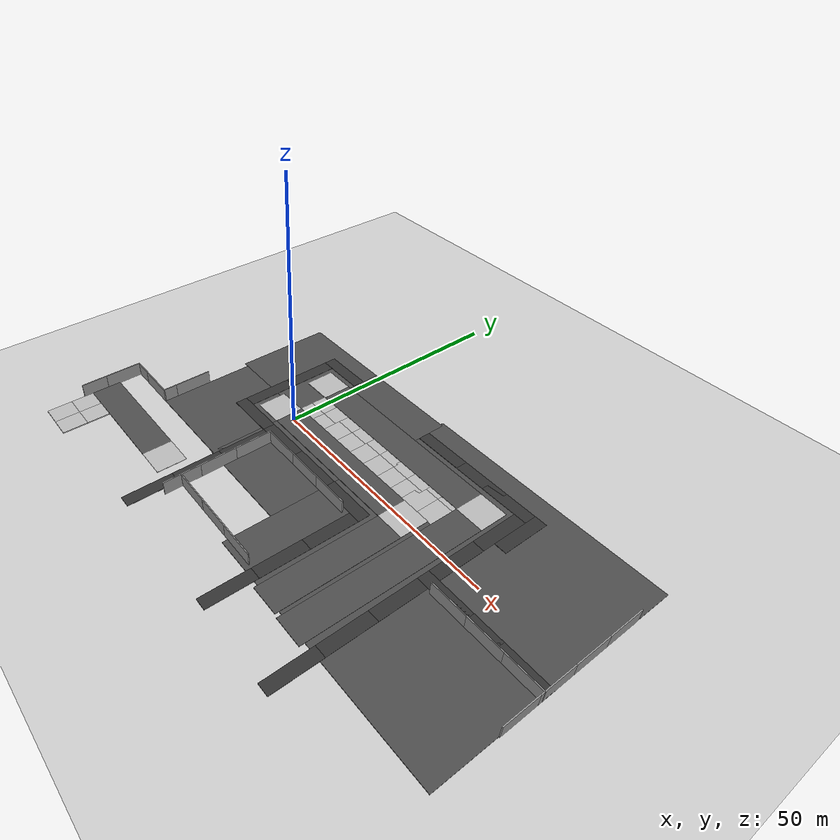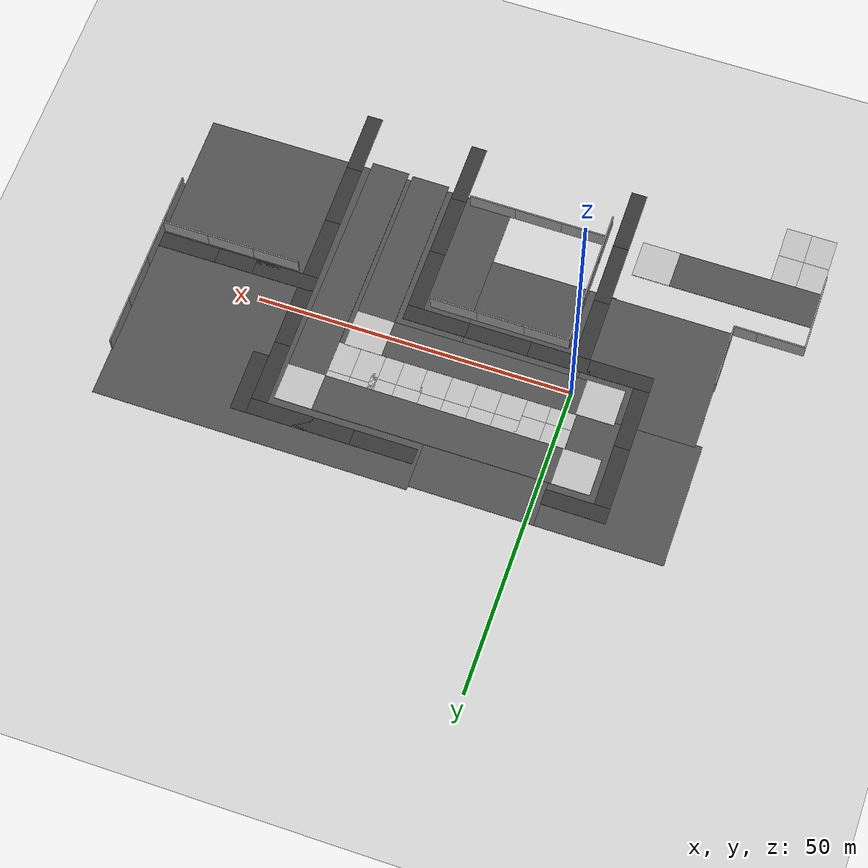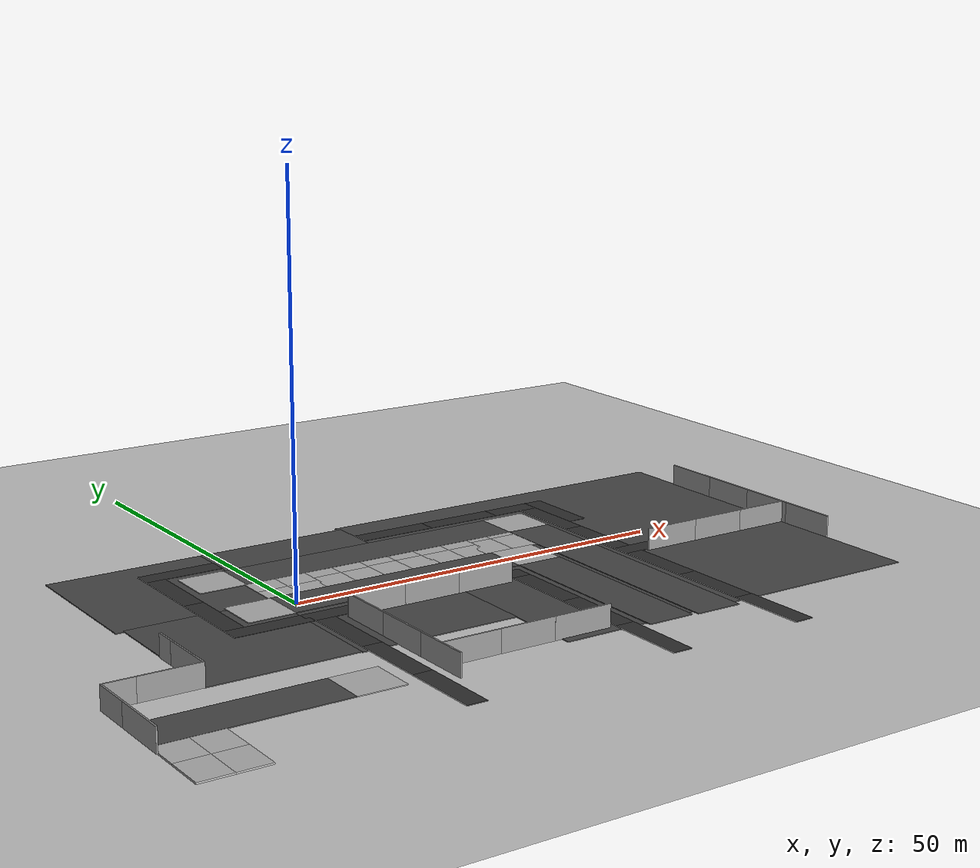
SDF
<sdf version="1.7">
 <world name="default">
  <model name="ground_plane">
   <static>1</static>
   <link name="link">
    <collision name="collision">
     <geometry><plane><normal>0 0 1</normal><size>100 100</size></plane></geometry>
     <surface><friction><ode><mu>100</mu><mu2>50</mu2></ode></friction></surface>
    </collision>
    <visual name="visual">
     <cast_shadows>0</cast_shadows>
     <geometry><plane><normal>0 0 1</normal><size>100 100</size></plane></geometry>
     <material>
      <script><uri>file://media/materials/scripts/gazebo.material</uri><name>Gazebo/Grey</name></script>
     </material>
    </visual>
   </link>
  </model>
  <model name="asphalt_plane">
   <static>1</static>
   <link name="link">
    <collision name="collision">
     <geometry><box><size>20 20 0.1</size></box></geometry>
     <surface><friction><ode><mu>100</mu><mu2>50</mu2></ode></friction></surface>
    </collision>
    <visual name="visual">
     <cast_shadows>0</cast_shadows>
     <geometry><box><size>20 20 0.1</size></box></geometry>
     <material>
      <script>
       <uri>model://asphalt_plane/materials/scripts</uri>
       <uri>model://asphalt_plane/materials/textures</uri>
       <name>vrc/asphalt</name>
      </script>
     </material>
    </visual>
   </link>
   <pose>-10.1692 -7.43707 0 0 -0 0</pose>
  </model>
  <model name="asphalt_plane_clone">
   <static>1</static>
   <link name="link">
    <collision name="collision">
     <geometry><box><size>20 20 0.1</size></box></geometry>
     <surface><friction><ode><mu>100</mu><mu2>50</mu2></ode></friction></surface>
    </collision>
    <visual name="visual">
     <cast_shadows>0</cast_shadows>
     <geometry><box><size>20 20 0.1</size></box></geometry>
     <material>
      <script>
       <uri>model://asphalt_plane/materials/scripts</uri>
       <uri>model://asphalt_plane/materials/textures</uri>
       <name>vrc/asphalt</name>
      </script>
     </material>
    </visual>
   </link>
   <pose>-11.1971 12.1802 0 0 -0 0</pose>
  </model>
  <model name="asphalt_plane_clone_clone">
   <static>1</static>
   <link name="link">
    <collision name="collision">
     <geometry><box><size>20 20 0.1</size></box></geometry>
     <surface><friction><ode><mu>100</mu><mu2>50</mu2></ode></friction></surface>
    </collision>
    <visual name="visual">
     <cast_shadows>0</cast_shadows>
     <geometry><box><size>20 20 0.1</size></box></geometry>
     <material>
      <script>
       <uri>model://asphalt_plane/materials/scripts</uri>
       <uri>model://asphalt_plane/materials/textures</uri>
       <name>vrc/asphalt</name>
      </script>
     </material>
    </visual>
   </link>
   <pose>8.71597 12.1785 0 0 -0 0</pose>
  </model>
  <model name="asphalt_plane_clone_clone_0">
   <static>1</static>
   <link name="link">
    <collision name="collision">
     <geometry><box><size>20 20 0.1</size></box></geometry>
     <surface><friction><ode><mu>100</mu><mu2>50</mu2></ode></friction></surface>
    </collision>
    <visual name="visual">
     <cast_shadows>0</cast_shadows>
     <geometry><box><size>20 20 0.1</size></box></geometry>
     <material>
      <script>
       <uri>model://asphalt_plane/materials/scripts</uri>
       <uri>model://asphalt_plane/materials/textures</uri>
       <name>vrc/asphalt</name>
      </script>
     </material>
    </visual>
   </link>
   <pose>8.27987 -7.58982 0 0 -0 0</pose>
  </model>
  <include>
   <uri>file:///home/dhaval_lad/dhaval_ws/src/Outdoor_navigation_decision_making/outdoor_robot_spawner/models/actor_1</uri>
  </include>
  <include>
   <uri>file:///home/dhaval_lad/dhaval_ws/src/Outdoor_navigation_decision_making/outdoor_robot_spawner/models/actor_2</uri>
  </include>
  <model name="side walk_clone_0">
   <pose>-6.19156 17.3637 0 0 -0 0</pose>
   <static>1</static>
   <link name="link">
    <visual name="visual">
     <pose>0 0 0.05 0 -0 0</pose>
     <geometry><box><size>10 2.5 0.1</size></box></geometry>
     <material><ambient>0.2 0.2 0.2 1</ambient></material>
    </visual>
    <collision name="collision">
     <pose>0 0 0.05 0 -0 0</pose>
     <geometry><box><size>10 2.5 0.1</size></box></geometry>
    </collision>
   </link>
  </model>
  <model name="side walk_clone_1">
   <pose>-9.91314 11.1641 0 0 0 -1.5667</pose>
   <static>1</static>
   <link name="link">
    <visual name="visual">
     <pose>0 0 0.05 0 -0 0</pose>
     <geometry><box><size>10 2.5 0.1</size></box></geometry>
     <material><ambient>0.2 0.2 0.2 1</ambient></material>
    </visual>
    <collision name="collision">
     <pose>0 0 0.05 0 -0 0</pose>
     <geometry><box><size>10 2.5 0.1</size></box></geometry>
    </collision>
   </link>
  </model>
  <model name="side walk_clone_1_clone">
   <pose>-9.88629 1.1782 0 0 0 -1.56946</pose>
   <static>1</static>
   <link name="link">
    <visual name="visual">
     <pose>0 0 0.05 0 -0 0</pose>
     <geometry><box><size>10 2.5 0.1</size></box></geometry>
     <material><ambient>0.2 0.2 0.2 1</ambient></material>
    </visual>
    <collision name="collision">
     <pose>0 0 0.05 0 -0 0</pose>
     <geometry><box><size>10 2.5 0.1</size></box></geometry>
    </collision>
   </link>
  </model>
  <model name="side walk_clone_0_clone">
   <pose>-6.1264 -5.0705 0 0 -0 0</pose>
   <static>1</static>
   <link name="link">
    <visual name="visual">
     <pose>0 0 0.05 0 -0 0</pose>
     <geometry><box><size>10 2.5 0.1</size></box></geometry>
     <material><ambient>0.2 0.2 0.2 1</ambient></material>
    </visual>
    <collision name="collision">
     <pose>0 0 0.05 0 -0 0</pose>
     <geometry><box><size>10 2.5 0.1</size></box></geometry>
    </collision>
   </link>
  </model>
  <model name="side walk_clone_0_clone_0">
   <pose>3.31852 -5.07088 0 0 -0 0</pose>
   <static>1</static>
   <link name="link">
    <visual name="visual">
     <pose>0 0 0.05 0 -0 0</pose>
     <geometry><box><size>10 2.5 0.1</size></box></geometry>
     <material><ambient>0.2 0.2 0.2 1</ambient></material>
    </visual>
    <collision name="collision">
     <pose>0 0 0.05 0 -0 0</pose>
     <geometry><box><size>10 2.5 0.1</size></box></geometry>
    </collision>
   </link>
  </model>
  <model name="side walk_clone_1_clone_clone">
   <pose>0.222815 -11.3123 0 0 0 -1.5667</pose>
   <static>1</static>
   <link name="link">
    <visual name="visual">
     <pose>0 0 0.05 0 -0 0</pose>
     <geometry><box><size>10 2.5 0.1</size></box></geometry>
     <material><ambient>0.2 0.2 0.2 1</ambient></material>
    </visual>
    <collision name="collision">
     <pose>0 0 0.05 0 -0 0</pose>
     <geometry><box><size>10 2.5 0.1</size></box></geometry>
    </collision>
   </link>
  </model>
  <model name="side walk_clone_0_clone_clone">
   <pose>13.2672 -5.07602 0 0 -0 0</pose>
   <static>1</static>
   <link name="link">
    <visual name="visual">
     <pose>0 0 0.05 0 -0 0</pose>
     <geometry><box><size>10 2.5 0.1</size></box></geometry>
     <material><ambient>0.2 0.2 0.2 1</ambient></material>
    </visual>
    <collision name="collision">
     <pose>0 0 0.05 0 -0 0</pose>
     <geometry><box><size>10 2.5 0.1</size></box></geometry>
    </collision>
   </link>
  </model>
  <model name="asphalt_plane_0_clone">
   <static>1</static>
   <link name="link">
    <collision name="collision"><geometry><box><size>50 50 0.1</size></box></geometry></collision>
    <visual name="visual">
     <cast_shadows>0</cast_shadows>
     <geometry><box><size>50 50 0.1</size></box></geometry>
     <material>
      <script>
       <uri>model://asphalt_plane/materials/scripts</uri>
       <uri>model://asphalt_plane/materials/textures</uri>
       <name>vrc/asphalt</name>
      </script>
     </material>
    </visual>
   </link>
   <pose>43.2053 -2.21198 0 0 -0 0</pose>
  </model>
  <model name="side walk_clone_2">
   <pose>23.7417 17.3764 0 0 -0 0</pose>
   <static>1</static>
   <link name="link">
    <visual name="visual">
     <pose>0 0 0.05 0 -0 0</pose>
     <geometry><box><size>10 2.5 0.1</size></box></geometry>
     <material><ambient>0.2 0.2 0.2 1</ambient></material>
    </visual>
    <collision name="collision">
     <pose>0 0 0.05 0 -0 0</pose>
     <geometry><box><size>10 2.5 0.1</size></box></geometry>
    </collision>
   </link>
  </model>
  <model name="side walk_clone_3">
   <pose>33.7384 17.3743 0 0 -0 0</pose>
   <static>1</static>
   <link name="link">
    <visual name="visual">
     <pose>0 0 0.05 0 -0 0</pose>
     <geometry><box><size>10 2.5 0.1</size></box></geometry>
     <material><ambient>0.2 0.2 0.2 1</ambient></material>
    </visual>
    <collision name="collision">
     <pose>0 0 0.05 0 -0 0</pose>
     <geometry><box><size>10 2.5 0.1</size></box></geometry>
    </collision>
   </link>
  </model>
  <model name="side walk_clone_1_clone_clone_clone_clone">
   <pose>0.256591 -21.2274 0 0 0 -1.5667</pose>
   <static>1</static>
   <link name="link">
    <visual name="visual">
     <pose>0 0 0.05 0 -0 0</pose>
     <geometry><box><size>10 2.5 0.1</size></box></geometry>
     <material><ambient>0.2 0.2 0.2 1</ambient></material>
    </visual>
    <collision name="collision">
     <pose>0 0 0.05 0 -0 0</pose>
     <geometry><box><size>10 2.5 0.1</size></box></geometry>
    </collision>
   </link>
  </model>
  <model name="side walk_clone_1_clone_clone_clone_clone_0">
   <pose>0.290651 -31.2092 0 0 0 -1.5667</pose>
   <static>1</static>
   <link name="link">
    <visual name="visual">
     <pose>0 0 0.05 0 -0 0</pose>
     <geometry><box><size>10 2.5 0.1</size></box></geometry>
     <material><ambient>0.2 0.2 0.2 1</ambient></material>
    </visual>
    <collision name="collision">
     <pose>0 0 0.05 0 -0 0</pose>
     <geometry><box><size>10 2.5 0.1</size></box></geometry>
    </collision>
   </link>
  </model>
  <model name="side walk_clone_0_clone_clone_clone">
   <pose>23.1677 -5.07058 0 0 -0 0</pose>
   <static>1</static>
   <link name="link">
    <visual name="visual">
     <pose>0 0 0.05 0 -0 0</pose>
     <geometry><box><size>10 2.5 0.1</size></box></geometry>
     <material><ambient>0.2 0.2 0.2 1</ambient></material>
    </visual>
    <collision name="collision">
     <pose>0 0 0.05 0 -0 0</pose>
     <geometry><box><size>10 2.5 0.1</size></box></geometry>
    </collision>
   </link>
  </model>
  <model name="side walk_clone_1_clone_clone_clone_clone_1">
   <pose>43.9499 11.1428 0 0 0 -1.5667</pose>
   <static>1</static>
   <link name="link">
    <visual name="visual">
     <pose>0 0 0.05 0 -0 0</pose>
     <geometry><box><size>10 2.5 0.1</size></box></geometry>
     <material><ambient>0.2 0.2 0.2 1</ambient></material>
    </visual>
    <collision name="collision">
     <pose>0 0 0.05 0 -0 0</pose>
     <geometry><box><size>10 2.5 0.1</size></box></geometry>
    </collision>
   </link>
  </model>
  <model name="side walk_clone_1_clone_clone_clone_clone_2">
   <pose>43.9881 1.1868 0 0 0 -1.5667</pose>
   <static>1</static>
   <link name="link">
    <visual name="visual">
     <pose>0 0 0.05 0 -0 0</pose>
     <geometry><box><size>10 2.5 0.1</size></box></geometry>
     <material><ambient>0.2 0.2 0.2 1</ambient></material>
    </visual>
    <collision name="collision">
     <pose>0 0 0.05 0 -0 0</pose>
     <geometry><box><size>10 2.5 0.1</size></box></geometry>
    </collision>
   </link>
  </model>
  <model name="side walk_clone_0_clone_clone_clone_0_clone_clone">
   <pose>53.9006 -4.98965 0 0 -0 0</pose>
   <static>1</static>
   <link name="link">
    <visual name="visual">
     <pose>0 0 0.05 0 -0 0</pose>
     <geometry><box><size>10 2.5 0.1</size></box></geometry>
     <material><ambient>0.2 0.2 0.2 1</ambient></material>
    </visual>
    <collision name="collision">
     <pose>0 0 0.05 0 -0 0</pose>
     <geometry><box><size>10 2.5 0.1</size></box></geometry>
    </collision>
   </link>
  </model>
  <model name="side walk_clone_0_clone_clone_clone_0_clone_clone_0">
   <pose>63.3362 -4.96787 0 0 -0 0</pose>
   <static>1</static>
   <link name="link">
    <visual name="visual">
     <pose>0 0 0.05 0 -0 0</pose>
     <geometry><box><size>10 2.5 0.1</size></box></geometry>
     <material><ambient>0.2 0.2 0.2 1</ambient></material>
    </visual>
    <collision name="collision">
     <pose>0 0 0.05 0 -0 0</pose>
     <geometry><box><size>10 2.5 0.1</size></box></geometry>
    </collision>
   </link>
  </model>
  <model name="road_plane_without_marks_clone">
   <static>1</static>
   <link name="link">
    <collision name="collision"><geometry><box><size>22.5097 6 0.1</size></box></geometry></collision>
    <visual name="visual">
     <cast_shadows>0</cast_shadows>
     <geometry><box><size>22.5097 6 0.1</size></box></geometry>
     <material>
      <script>
       <uri>model://road_plane_without_marks/materials/scripts</uri>
       <uri>model://road_plane_without_marks/materials/textures</uri>
       <name>vrc/road_no_m</name>
      </script>
     </material>
    </visual>
   </link>
   <pose>-19.9247 -25.2286 0.081661 0 -0 0</pose>
  </model>
  <model name="road_diag_clone">
   <static>1</static>
   <link name="link">
    <collision name="collision"><geometry><box><size>6 6 0.1</size></box></geometry></collision>
    <visual name="visual">
     <cast_shadows>0</cast_shadows>
     <geometry><box><size>6 6 0.1</size></box></geometry>
     <material>
      <script>
       <uri>model://road_diag/materials/scripts</uri>
       <uri>model://road_diag/materials/textures</uri>
       <name>vrc/diag</name>
      </script>
     </material>
    </visual>
   </link>
   <pose>-5.71886 -25.2377 0.084251 0 -0 1.56496</pose>
  </model>
  <model name="road_plane_without_marks_clone_clone">
   <static>1</static>
   <link name="link">
    <collision name="collision"><geometry><box><size>37.9662 6 0.1</size></box></geometry></collision>
    <visual name="visual">
     <cast_shadows>0</cast_shadows>
     <geometry><box><size>37.9662 6 0.1</size></box></geometry>
     <material>
      <script>
       <uri>model://road_plane_without_marks/materials/scripts</uri>
       <uri>model://road_plane_without_marks/materials/textures</uri>
       <name>vrc/road_no_m</name>
      </script>
     </material>
    </visual>
   </link>
   <pose>17.0824 12.0438 0.081661 0 -0 0</pose>
  </model>
  <model name="road_diag_clone_0">
   <static>1</static>
   <link name="link">
    <collision name="collision"><geometry><box><size>6 6 0.1</size></box></geometry></collision>
    <visual name="visual">
     <cast_shadows>0</cast_shadows>
     <geometry><box><size>6 6 0.1</size></box></geometry>
     <material>
      <script>
       <uri>model://road_diag/materials/scripts</uri>
       <uri>model://road_diag/materials/textures</uri>
       <name>vrc/diag</name>
      </script>
     </material>
    </visual>
   </link>
   <pose>-4.65965 12.0313 0.084251 0 -0 3.1412</pose>
  </model>
  <model name="road_plane_without_marks_clone_clone_clone">
   <static>1</static>
   <link name="link">
    <collision name="collision"><geometry><box><size>37.8755 6 0.1</size></box></geometry></collision>
    <visual name="visual">
     <cast_shadows>0</cast_shadows>
     <geometry><box><size>37.8755 6 0.1</size></box></geometry>
     <material>
      <script>
       <uri>model://road_plane_without_marks/materials/scripts</uri>
       <uri>model://road_plane_without_marks/materials/textures</uri>
       <name>vrc/road_no_m</name>
      </script>
     </material>
    </visual>
   </link>
   <pose>38.793 -9.3092 0.081661 0 0 -1.57875</pose>
  </model>
  <model name="road_diag_clone_0_clone">
   <static>1</static>
   <link name="link">
    <collision name="collision"><geometry><box><size>6 6 0.1</size></box></geometry></collision>
    <visual name="visual">
     <cast_shadows>0</cast_shadows>
     <geometry><box><size>6 6 0.1</size></box></geometry>
     <material>
      <script>
       <uri>model://road_diag/materials/scripts</uri>
       <uri>model://road_diag/materials/textures</uri>
       <name>vrc/diag</name>
      </script>
     </material>
    </visual>
   </link>
   <pose>-4.66703 0.067296 0.084251 0 0 -1.57009</pose>
  </model>
  <model name="road_diag_clone_clone">
   <static>1</static>
   <link name="link">
    <collision name="collision"><geometry><box><size>6 6 0.1</size></box></geometry></collision>
    <visual name="visual">
     <cast_shadows>0</cast_shadows>
     <geometry><box><size>6 6 0.1</size></box></geometry>
     <material>
      <script>
       <uri>model://road_diag/materials/scripts</uri>
       <uri>model://road_diag/materials/textures</uri>
       <name>vrc/diag</name>
      </script>
     </material>
    </visual>
   </link>
   <pose>32.0741 0.165658 0.084251 0 -0 1.56496</pose>
  </model>
  <model name="road_plane_without_marks_clone_clone_clone_0">
   <static>1</static>
   <link name="link">
    <collision name="collision"><geometry><box><size>31.1862 6 0.1</size></box></geometry></collision>
    <visual name="visual">
     <cast_shadows>0</cast_shadows>
     <geometry><box><size>31.1862 6 0.1</size></box></geometry>
     <material>
      <script>
       <uri>model://road_plane_without_marks/materials/scripts</uri>
       <uri>model://road_plane_without_marks/materials/textures</uri>
       <name>vrc/road_no_m</name>
      </script>
     </material>
    </visual>
   </link>
   <pose>13.7408 0.166139 0.081661 0 -0 0</pose>
  </model>
  <model name="road_plane_without_marks_clone_0_clone">
   <static>1</static>
   <link name="link">
    <collision name="collision"><geometry><box><size>25.2144 6 0.1</size></box></geometry></collision>
    <visual name="visual">
     <cast_shadows>0</cast_shadows>
     <geometry><box><size>25.2144 6 0.1</size></box></geometry>
     <material>
      <script>
       <uri>model://road_plane_without_marks/materials/scripts</uri>
       <uri>model://road_plane_without_marks/materials/textures</uri>
       <name>vrc/road_no_m</name>
      </script>
     </material>
    </visual>
   </link>
   <pose>32.0175 -15.3655 0.081661 0 -0 1.56522</pose>
  </model>
  <model name="road_diag_clone_clone_clone">
   <static>1</static>
   <link name="link">
    <collision name="collision"><geometry><box><size>6 6 0.1</size></box></geometry></collision>
    <visual name="visual">
     <cast_shadows>0</cast_shadows>
     <geometry><box><size>6 6 0.1</size></box></geometry>
     <material>
      <script>
       <uri>model://road_diag/materials/scripts</uri>
       <uri>model://road_diag/materials/textures</uri>
       <name>vrc/diag</name>
      </script>
     </material>
    </visual>
   </link>
   <pose>38.9706 11.9877 0.084251 0 -0 1.56496</pose>
  </model>
  <model name="side walk_clone_0_clone_clone_clone_0_clone_clone_clone">
   <pose>47.7688 -4.98861 0 0 -0 0</pose>
   <static>1</static>
   <link name="link">
    <visual name="visual">
     <pose>0 0 0.05 0 -0 0</pose>
     <geometry><box><size>10 2.5 0.1</size></box></geometry>
     <material><ambient>0.2 0.2 0.2 1</ambient></material>
    </visual>
    <collision name="collision">
     <pose>0 0 0.05 0 -0 0</pose>
     <geometry><box><size>10 2.5 0.1</size></box></geometry>
    </collision>
   </link>
  </model>
  <model name="side walk_clone_3_clone">
   <pose>40.1805 17.3766 0 0 -0 0.000857</pose>
   <static>1</static>
   <link name="link">
    <visual name="visual">
     <pose>0 0 0.05 0 -0 0</pose>
     <geometry><box><size>10 2.5 0.1</size></box></geometry>
     <material><ambient>0.2 0.2 0.2 1</ambient></material>
    </visual>
    <collision name="collision">
     <pose>0 0 0.05 0 -0 0</pose>
     <geometry><box><size>10 2.5 0.1</size></box></geometry>
    </collision>
   </link>
  </model>
  <model name="side walk_clone_1_clone_clone_clone_3">
   <pose>26.8909 -11.2773 0 0 0 -1.57698</pose>
   <static>1</static>
   <link name="link">
    <visual name="visual">
     <pose>0 0 0.05 0 -0 0</pose>
     <geometry><box><size>10 2.5 0.1</size></box></geometry>
     <material><ambient>0.2 0.2 0.2 1</ambient></material>
    </visual>
    <collision name="collision">
     <pose>0 0 0.05 0 -0 0</pose>
     <geometry><box><size>10 2.5 0.1</size></box></geometry>
    </collision>
   </link>
  </model>
  <model name="side walk_clone_1_clone_clone_clone_3_clone">
   <pose>26.8122 -21.2253 0 0 0 -1.57698</pose>
   <static>1</static>
   <link name="link">
    <visual name="visual">
     <pose>0 0 0.05 0 -0 0</pose>
     <geometry><box><size>10 2.5 0.1</size></box></geometry>
     <material><ambient>0.2 0.2 0.2 1</ambient></material>
    </visual>
    <collision name="collision">
     <pose>0 0 0.05 0 -0 0</pose>
     <geometry><box><size>10 2.5 0.1</size></box></geometry>
    </collision>
   </link>
  </model>
  <model name="side walk_clone_1_clone_clone_clone_3_clone_0">
   <pose>26.7287 -31.1872 0 0 0 -1.57698</pose>
   <static>1</static>
   <link name="link">
    <visual name="visual">
     <pose>0 0 0.05 0 -0 0</pose>
     <geometry><box><size>10 2.5 0.1</size></box></geometry>
     <material><ambient>0.2 0.2 0.2 1</ambient></material>
    </visual>
    <collision name="collision">
     <pose>0 0 0.05 0 -0 0</pose>
     <geometry><box><size>10 2.5 0.1</size></box></geometry>
    </collision>
   </link>
  </model>
  <model name="side walk_clone_1_clone_clone_clone_clone_3">
   <pose>44.0417 -11.233 0 0 0 -1.5667</pose>
   <static>1</static>
   <link name="link">
    <visual name="visual">
     <pose>0 0 0.05 0 -0 0</pose>
     <geometry><box><size>10 2.5 0.1</size></box></geometry>
     <material><ambient>0.2 0.2 0.2 1</ambient></material>
    </visual>
    <collision name="collision">
     <pose>0 0 0.05 0 -0 0</pose>
     <geometry><box><size>10 2.5 0.1</size></box></geometry>
    </collision>
   </link>
  </model>
  <model name="side walk_clone_1_clone_clone_clone_clone_4">
   <pose>44.0825 -21.2337 0 0 0 -1.5667</pose>
   <static>1</static>
   <link name="link">
    <visual name="visual">
     <pose>0 0 0.05 0 -0 0</pose>
     <geometry><box><size>10 2.5 0.1</size></box></geometry>
     <material><ambient>0.2 0.2 0.2 1</ambient></material>
    </visual>
    <collision name="collision">
     <pose>0 0 0.05 0 -0 0</pose>
     <geometry><box><size>10 2.5 0.1</size></box></geometry>
    </collision>
   </link>
  </model>
  <model name="side walk_clone_1_clone_clone_clone_clone_5">
   <pose>44.1275 -31.2282 0 0 0 -1.5667</pose>
   <static>1</static>
   <link name="link">
    <visual name="visual">
     <pose>0 0 0.05 0 -0 0</pose>
     <geometry><box><size>10 2.5 0.1</size></box></geometry>
     <material><ambient>0.2 0.2 0.2 1</ambient></material>
    </visual>
    <collision name="collision">
     <pose>0 0 0.05 0 -0 0</pose>
     <geometry><box><size>10 2.5 0.1</size></box></geometry>
    </collision>
   </link>
  </model>
  <model name="grey_wall_clone_clone_clone_2_clone_1_clone">
   <static>1</static>
   <link name="link">
    <pose>0 0 1.4 0 -0 0</pose>
    <collision name="collision"><geometry><box><size>7.5 0.2 2.8</size></box></geometry></collision>
    <visual name="visual">
     <cast_shadows>0</cast_shadows>
     <geometry><box><size>7.5 0.2 2.8</size></box></geometry>
     <material>
      <script>
       <uri>model://grey_wall/materials/scripts</uri>
       <uri>model://grey_wall/materials/textures</uri>
       <name>vrc/grey_wall</name>
      </script>
     </material>
    </visual>
   </link>
   <pose>6.42593 -26.0029 0 0 -0 3.13795</pose>
  </model>
  <model name="grey_wall_clone_clone_clone_2_clone_1_clone_0">
   <static>1</static>
   <link name="link">
    <pose>0 0 1.4 0 -0 0</pose>
    <collision name="collision"><geometry><box><size>7.5 0.2 2.8</size></box></geometry></collision>
    <visual name="visual">
     <cast_shadows>0</cast_shadows>
     <geometry><box><size>7.5 0.2 2.8</size></box></geometry>
     <material>
      <script>
       <uri>model://grey_wall/materials/scripts</uri>
       <uri>model://grey_wall/materials/textures</uri>
       <name>vrc/grey_wall</name>
      </script>
     </material>
    </visual>
   </link>
   <pose>13.669 -26.0243 0 0 -0 3.13795</pose>
  </model>
  <model name="grey_wall_clone_clone_clone_2_clone_1_clone_1">
   <static>1</static>
   <link name="link">
    <pose>0 0 1.4 0 -0 0</pose>
    <collision name="collision"><geometry><box><size>7.5 0.2 2.8</size></box></geometry></collision>
    <visual name="visual">
     <cast_shadows>0</cast_shadows>
     <geometry><box><size>7.5 0.2 2.8</size></box></geometry>
     <material>
      <script>
       <uri>model://grey_wall/materials/scripts</uri>
       <uri>model://grey_wall/materials/textures</uri>
       <name>vrc/grey_wall</name>
      </script>
     </material>
    </visual>
   </link>
   <pose>21.0262 -26.0554 0 0 -0 3.13795</pose>
  </model>
  <model name="grey_wall_clone_clone_clone_2_clone_1_clone_2">
   <static>1</static>
   <link name="link">
    <pose>0 0 1.4 0 -0 0</pose>
    <collision name="collision"><geometry><box><size>7.5 0.2 2.8</size></box></geometry></collision>
    <visual name="visual">
     <cast_shadows>0</cast_shadows>
     <geometry><box><size>7.5 0.2 2.8</size></box></geometry>
     <material>
      <script>
       <uri>model://grey_wall/materials/scripts</uri>
       <uri>model://grey_wall/materials/textures</uri>
       <name>vrc/grey_wall</name>
      </script>
     </material>
    </visual>
   </link>
   <pose>6.34936 -7.14951 0 0 -0 3.13795</pose>
  </model>
  <model name="grey_wall_clone_clone_clone_2_clone_1_clone_3">
   <static>1</static>
   <link name="link">
    <pose>0 0 1.4 0 -0 0</pose>
    <collision name="collision"><geometry><box><size>7.5 0.2 2.8</size></box></geometry></collision>
    <visual name="visual">
     <cast_shadows>0</cast_shadows>
     <geometry><box><size>7.5 0.2 2.8</size></box></geometry>
     <material>
      <script>
       <uri>model://grey_wall/materials/scripts</uri>
       <uri>model://grey_wall/materials/textures</uri>
       <name>vrc/grey_wall</name>
      </script>
     </material>
    </visual>
   </link>
   <pose>13.5814 -7.17054 0 0 -0 3.13795</pose>
  </model>
  <model name="grey_wall_clone_clone_clone_2_clone_1_clone_4">
   <static>1</static>
   <link name="link">
    <pose>0 0 1.4 0 -0 0</pose>
    <collision name="collision"><geometry><box><size>7.5 0.2 2.8</size></box></geometry></collision>
    <visual name="visual">
     <cast_shadows>0</cast_shadows>
     <geometry><box><size>7.5 0.2 2.8</size></box></geometry>
     <material>
      <script>
       <uri>model://grey_wall/materials/scripts</uri>
       <uri>model://grey_wall/materials/textures</uri>
       <name>vrc/grey_wall</name>
      </script>
     </material>
    </visual>
   </link>
   <pose>21.0766 -7.19683 0 0 -0 3.13795</pose>
  </model>
  <model name="grey_wall_clone_clone_1_clone">
   <static>1</static>
   <link name="link">
    <pose>0 0 1.4 0 -0 0</pose>
    <collision name="collision"><geometry><box><size>7.5 0.2 2.8</size></box></geometry></collision>
    <visual name="visual">
     <cast_shadows>0</cast_shadows>
     <geometry><box><size>7.5 0.2 2.8</size></box></geometry>
     <material>
      <script>
       <uri>model://grey_wall/materials/scripts</uri>
       <uri>model://grey_wall/materials/textures</uri>
       <name>vrc/grey_wall</name>
      </script>
     </material>
    </visual>
   </link>
   <pose>64.5798 -6.54659 0 0 -0 0</pose>
  </model>
  <model name="grey_wall_clone_clone_1_clone_0">
   <static>1</static>
   <link name="link">
    <pose>0 0 1.4 0 -0 0</pose>
    <collision name="collision"><geometry><box><size>7.5 0.2 2.8</size></box></geometry></collision>
    <visual name="visual">
     <cast_shadows>0</cast_shadows>
     <geometry><box><size>7.5 0.2 2.8</size></box></geometry>
     <material>
      <script>
       <uri>model://grey_wall/materials/scripts</uri>
       <uri>model://grey_wall/materials/textures</uri>
       <name>vrc/grey_wall</name>
      </script>
     </material>
    </visual>
   </link>
   <pose>57.1351 -6.55035 0 0 -0 0</pose>
  </model>
  <model name="grey_wall_clone_clone_1_clone_1">
   <static>1</static>
   <link name="link">
    <pose>0 0 1.4 0 -0 0</pose>
    <collision name="collision"><geometry><box><size>7.5 0.2 2.8</size></box></geometry></collision>
    <visual name="visual">
     <cast_shadows>0</cast_shadows>
     <geometry><box><size>7.5 0.2 2.8</size></box></geometry>
     <material>
      <script>
       <uri>model://grey_wall/materials/scripts</uri>
       <uri>model://grey_wall/materials/textures</uri>
       <name>vrc/grey_wall</name>
      </script>
     </material>
    </visual>
   </link>
   <pose>49.7247 -6.55287 0 0 -0 0</pose>
  </model>
  <model name="mud_box_clone_5_clone_clone_4">
   <static>1</static>
   <link name="link">
    <collision name="collision"><geometry><box><size>8 10 0.2</size></box></geometry></collision>
    <visual name="visual_1">
     <pose>-2 2.5 0 0 -0 0</pose>
     <cast_shadows>0</cast_shadows>
     <geometry><box><size>4 5 0.2</size></box></geometry>
     <material>
      <script>
       <uri>model://mud_box/materials/scripts</uri>
       <uri>model://mud_box/materials/textures</uri>
       <name>vrc/mud</name>
      </script>
     </material>
    </visual>
    <visual name="visual_2">
     <pose>2 2.5 0 0 -0 0</pose>
     <cast_shadows>0</cast_shadows>
     <geometry><box><size>4 5 0.2</size></box></geometry>
     <material>
      <script>
       <uri>model://mud_box/materials/scripts</uri>
       <uri>model://mud_box/materials/textures</uri>
       <name>vrc/mud</name>
      </script>
     </material>
    </visual>
    <visual name="visual_3">
     <pose>2 -2.5 0 0 -0 0</pose>
     <cast_shadows>0</cast_shadows>
     <geometry><box><size>4 5 0.2</size></box></geometry>
     <material>
      <script>
       <uri>model://mud_box/materials/scripts</uri>
       <uri>model://mud_box/materials/textures</uri>
       <name>vrc/mud</name>
      </script>
     </material>
    </visual>
    <visual name="visual_4">
     <pose>-2 -2.5 0 0 -0 0</pose>
     <cast_shadows>0</cast_shadows>
     <geometry><box><size>4 5 0.2</size></box></geometry>
     <material>
      <script>
       <uri>model://mud_box/materials/scripts</uri>
       <uri>model://mud_box/materials/textures</uri>
       <name>vrc/mud</name>
      </script>
     </material>
    </visual>
   </link>
   <pose>-27.172 -32.7959 0 0 -0 0</pose>
  </model>
  <model name="mud_box_clone_5_clone_clone_7">
   <static>1</static>
   <link name="link">
    <collision name="collision"><geometry><box><size>8 10 0.2</size></box></geometry></collision>
    <visual name="visual_1">
     <pose>-2 2.5 0 0 -0 0</pose>
     <cast_shadows>0</cast_shadows>
     <geometry><box><size>4 5 0.2</size></box></geometry>
     <material>
      <script>
       <uri>model://mud_box/materials/scripts</uri>
       <uri>model://mud_box/materials/textures</uri>
       <name>vrc/mud</name>
      </script>
     </material>
    </visual>
    <visual name="visual_2">
     <pose>2 2.5 0 0 -0 0</pose>
     <cast_shadows>0</cast_shadows>
     <geometry><box><size>4 5 0.2</size></box></geometry>
     <material>
      <script>
       <uri>model://mud_box/materials/scripts</uri>
       <uri>model://mud_box/materials/textures</uri>
       <name>vrc/mud</name>
      </script>
     </material>
    </visual>
    <visual name="visual_3">
     <pose>2 -2.5 0 0 -0 0</pose>
     <cast_shadows>0</cast_shadows>
     <geometry><box><size>4 5 0.2</size></box></geometry>
     <material>
      <script>
       <uri>model://mud_box/materials/scripts</uri>
       <uri>model://mud_box/materials/textures</uri>
       <name>vrc/mud</name>
      </script>
     </material>
    </visual>
    <visual name="visual_4">
     <pose>-2 -2.5 0 0 -0 0</pose>
     <cast_shadows>0</cast_shadows>
     <geometry><box><size>4 5 0.2</size></box></geometry>
     <material>
      <script>
       <uri>model://mud_box/materials/scripts</uri>
       <uri>model://mud_box/materials/textures</uri>
       <name>vrc/mud</name>
      </script>
     </material>
    </visual>
   </link>
   <pose>2.11021 5.88317 0 0 -0 0</pose>
  </model>
  <model name="mud_box_clone_5_clone_clone_8">
   <static>1</static>
   <link name="link">
    <collision name="collision"><geometry><box><size>8 10 0.2</size></box></geometry></collision>
    <visual name="visual_1">
     <pose>-2 2.5 0 0 -0 0</pose>
     <cast_shadows>0</cast_shadows>
     <geometry><box><size>4 5 0.2</size></box></geometry>
     <material>
      <script>
       <uri>model://mud_box/materials/scripts</uri>
       <uri>model://mud_box/materials/textures</uri>
       <name>vrc/mud</name>
      </script>
     </material>
    </visual>
    <visual name="visual_2">
     <pose>2 2.5 0 0 -0 0</pose>
     <cast_shadows>0</cast_shadows>
     <geometry><box><size>4 5 0.2</size></box></geometry>
     <material>
      <script>
       <uri>model://mud_box/materials/scripts</uri>
       <uri>model://mud_box/materials/textures</uri>
       <name>vrc/mud</name>
      </script>
     </material>
    </visual>
    <visual name="visual_3">
     <pose>2 -2.5 0 0 -0 0</pose>
     <cast_shadows>0</cast_shadows>
     <geometry><box><size>4 5 0.2</size></box></geometry>
     <material>
      <script>
       <uri>model://mud_box/materials/scripts</uri>
       <uri>model://mud_box/materials/textures</uri>
       <name>vrc/mud</name>
      </script>
     </material>
    </visual>
    <visual name="visual_4">
     <pose>-2 -2.5 0 0 -0 0</pose>
     <cast_shadows>0</cast_shadows>
     <geometry><box><size>4 5 0.2</size></box></geometry>
     <material>
      <script>
       <uri>model://mud_box/materials/scripts</uri>
       <uri>model://mud_box/materials/textures</uri>
       <name>vrc/mud</name>
      </script>
     </material>
    </visual>
   </link>
   <pose>9.81831 6.85602 0 0 -0 0</pose>
  </model>
  <model name="mud_box_clone_5_clone_clone_9">
   <static>1</static>
   <link name="link">
    <collision name="collision"><geometry><box><size>8 10 0.2</size></box></geometry></collision>
    <visual name="visual_1">
     <pose>-2 2.5 0 0 -0 0</pose>
     <cast_shadows>0</cast_shadows>
     <geometry><box><size>4 5 0.2</size></box></geometry>
     <material>
      <script>
       <uri>model://mud_box/materials/scripts</uri>
       <uri>model://mud_box/materials/textures</uri>
       <name>vrc/mud</name>
      </script>
     </material>
    </visual>
    <visual name="visual_2">
     <pose>2 2.5 0 0 -0 0</pose>
     <cast_shadows>0</cast_shadows>
     <geometry><box><size>4 5 0.2</size></box></geometry>
     <material>
      <script>
       <uri>model://mud_box/materials/scripts</uri>
       <uri>model://mud_box/materials/textures</uri>
       <name>vrc/mud</name>
      </script>
     </material>
    </visual>
    <visual name="visual_3">
     <pose>2 -2.5 0 0 -0 0</pose>
     <cast_shadows>0</cast_shadows>
     <geometry><box><size>4 5 0.2</size></box></geometry>
     <material>
      <script>
       <uri>model://mud_box/materials/scripts</uri>
       <uri>model://mud_box/materials/textures</uri>
       <name>vrc/mud</name>
      </script>
     </material>
    </visual>
    <visual name="visual_4">
     <pose>-2 -2.5 0 0 -0 0</pose>
     <cast_shadows>0</cast_shadows>
     <geometry><box><size>4 5 0.2</size></box></geometry>
     <material>
      <script>
       <uri>model://mud_box/materials/scripts</uri>
       <uri>model://mud_box/materials/textures</uri>
       <name>vrc/mud</name>
      </script>
     </material>
    </visual>
   </link>
   <pose>17.7013 7.15849 0 0 -0 0</pose>
  </model>
  <model name="mud_box_clone_5_clone_clone_10">
   <static>1</static>
   <link name="link">
    <collision name="collision"><geometry><box><size>8 10 0.2</size></box></geometry></collision>
    <visual name="visual_1">
     <pose>-2 2.5 0 0 -0 0</pose>
     <cast_shadows>0</cast_shadows>
     <geometry><box><size>4 5 0.2</size></box></geometry>
     <material>
      <script>
       <uri>model://mud_box/materials/scripts</uri>
       <uri>model://mud_box/materials/textures</uri>
       <name>vrc/mud</name>
      </script>
     </material>
    </visual>
    <visual name="visual_2">
     <pose>2 2.5 0 0 -0 0</pose>
     <cast_shadows>0</cast_shadows>
     <geometry><box><size>4 5 0.2</size></box></geometry>
     <material>
      <script>
       <uri>model://mud_box/materials/scripts</uri>
       <uri>model://mud_box/materials/textures</uri>
       <name>vrc/mud</name>
      </script>
     </material>
    </visual>
    <visual name="visual_3">
     <pose>2 -2.5 0 0 -0 0</pose>
     <cast_shadows>0</cast_shadows>
     <geometry><box><size>4 5 0.2</size></box></geometry>
     <material>
      <script>
       <uri>model://mud_box/materials/scripts</uri>
       <uri>model://mud_box/materials/textures</uri>
       <name>vrc/mud</name>
      </script>
     </material>
    </visual>
    <visual name="visual_4">
     <pose>-2 -2.5 0 0 -0 0</pose>
     <cast_shadows>0</cast_shadows>
     <geometry><box><size>4 5 0.2</size></box></geometry>
     <material>
      <script>
       <uri>model://mud_box/materials/scripts</uri>
       <uri>model://mud_box/materials/textures</uri>
       <name>vrc/mud</name>
      </script>
     </material>
    </visual>
   </link>
   <pose>25.3751 7.06472 0 0 -0 0</pose>
  </model>
  <model name="mud_box_clone_5_clone_clone_11">
   <static>1</static>
   <link name="link">
    <collision name="collision"><geometry><box><size>8 10 0.2</size></box></geometry></collision>
    <visual name="visual_1">
     <pose>-2 2.5 0 0 -0 0</pose>
     <cast_shadows>0</cast_shadows>
     <geometry><box><size>4 5 0.2</size></box></geometry>
     <material>
      <script>
       <uri>model://mud_box/materials/scripts</uri>
       <uri>model://mud_box/materials/textures</uri>
       <name>vrc/mud</name>
      </script>
     </material>
    </visual>
    <visual name="visual_2">
     <pose>2 2.5 0 0 -0 0</pose>
     <cast_shadows>0</cast_shadows>
     <geometry><box><size>4 5 0.2</size></box></geometry>
     <material>
      <script>
       <uri>model://mud_box/materials/scripts</uri>
       <uri>model://mud_box/materials/textures</uri>
       <name>vrc/mud</name>
      </script>
     </material>
    </visual>
    <visual name="visual_3">
     <pose>2 -2.5 0 0 -0 0</pose>
     <cast_shadows>0</cast_shadows>
     <geometry><box><size>4 5 0.2</size></box></geometry>
     <material>
      <script>
       <uri>model://mud_box/materials/scripts</uri>
       <uri>model://mud_box/materials/textures</uri>
       <name>vrc/mud</name>
      </script>
     </material>
    </visual>
    <visual name="visual_4">
     <pose>-2 -2.5 0 0 -0 0</pose>
     <cast_shadows>0</cast_shadows>
     <geometry><box><size>4 5 0.2</size></box></geometry>
     <material>
      <script>
       <uri>model://mud_box/materials/scripts</uri>
       <uri>model://mud_box/materials/textures</uri>
       <name>vrc/mud</name>
      </script>
     </material>
    </visual>
   </link>
   <pose>32.3382 8.06211 0 0 -0 0</pose>
  </model>
  <model name="grey_wall_clone_clone_clone_clone_1">
   <static>1</static>
   <link name="link">
    <pose>0 0 1.4 0 -0 0</pose>
    <collision name="collision"><geometry><box><size>7.5 0.2 2.8</size></box></geometry></collision>
    <visual name="visual">
     <cast_shadows>0</cast_shadows>
     <geometry><box><size>7.5 0.2 2.8</size></box></geometry>
     <material>
      <script>
       <uri>model://grey_wall/materials/scripts</uri>
       <uri>model://grey_wall/materials/textures</uri>
       <name>vrc/grey_wall</name>
      </script>
     </material>
    </visual>
   </link>
   <pose>2.72532 -10.9569 0 0 0 -1.56776</pose>
  </model>
  <model name="grey_wall_clone_clone_clone_clone_2">
   <static>1</static>
   <link name="link">
    <pose>0 0 1.4 0 -0 0</pose>
    <collision name="collision"><geometry><box><size>7.5 0.2 2.8</size></box></geometry></collision>
    <visual name="visual">
     <cast_shadows>0</cast_shadows>
     <geometry><box><size>7.5 0.2 2.8</size></box></geometry>
     <material>
      <script>
       <uri>model://grey_wall/materials/scripts</uri>
       <uri>model://grey_wall/materials/textures</uri>
       <name>vrc/grey_wall</name>
      </script>
     </material>
    </visual>
   </link>
   <pose>2.74087 -18.3711 0 0 0 -1.56776</pose>
  </model>
  <model name="grey_wall_clone_clone_clone_clone_3">
   <static>1</static>
   <link name="link">
    <pose>0 0 1.4 0 -0 0</pose>
    <collision name="collision"><geometry><box><size>7.5 0.2 2.8</size></box></geometry></collision>
    <visual name="visual">
     <cast_shadows>0</cast_shadows>
     <geometry><box><size>7.5 0.2 2.8</size></box></geometry>
     <material>
      <script>
       <uri>model://grey_wall/materials/scripts</uri>
       <uri>model://grey_wall/materials/textures</uri>
       <name>vrc/grey_wall</name>
      </script>
     </material>
    </visual>
   </link>
   <pose>2.76764 -25.8697 0 0 0 -1.56776</pose>
  </model>
  <model name="grey_wall_clone_clone_clone_clone_0_clone_0">
   <static>1</static>
   <link name="link">
    <pose>0 0 1.4 0 -0 0</pose>
    <collision name="collision"><geometry><box><size>7.5 0.2 2.8</size></box></geometry></collision>
    <visual name="visual">
     <cast_shadows>0</cast_shadows>
     <geometry><box><size>7.5 0.2 2.8</size></box></geometry>
     <material>
      <script>
       <uri>model://grey_wall/materials/scripts</uri>
       <uri>model://grey_wall/materials/textures</uri>
       <name>vrc/grey_wall</name>
      </script>
     </material>
    </visual>
   </link>
   <pose>68.1645 11.3404 0 0 0 -1.56776</pose>
  </model>
  <model name="grey_wall_clone_clone_clone_clone_0_clone_1">
   <static>1</static>
   <link name="link">
    <pose>0 0 1.4 0 -0 0</pose>
    <collision name="collision"><geometry><box><size>7.5 0.2 2.8</size></box></geometry></collision>
    <visual name="visual">
     <cast_shadows>0</cast_shadows>
     <geometry><box><size>7.5 0.2 2.8</size></box></geometry>
     <material>
      <script>
       <uri>model://grey_wall/materials/scripts</uri>
       <uri>model://grey_wall/materials/textures</uri>
       <name>vrc/grey_wall</name>
      </script>
     </material>
    </visual>
   </link>
   <pose>68.1905 3.84066 0 0 0 -1.56776</pose>
  </model>
  <model name="grey_wall_clone_clone_clone_clone_0_clone_2">
   <static>1</static>
   <link name="link">
    <pose>0 0 1.4 0 -0 0</pose>
    <collision name="collision"><geometry><box><size>7.5 0.2 2.8</size></box></geometry></collision>
    <visual name="visual">
     <cast_shadows>0</cast_shadows>
     <geometry><box><size>7.5 0.2 2.8</size></box></geometry>
     <material>
      <script>
       <uri>model://grey_wall/materials/scripts</uri>
       <uri>model://grey_wall/materials/textures</uri>
       <name>vrc/grey_wall</name>
      </script>
     </material>
    </visual>
   </link>
   <pose>68.2186 -3.62743 0 0 0 -1.56776</pose>
  </model>
  <model name="grey_wall_clone_clone_clone_clone_0_clone_3">
   <static>1</static>
   <link name="link">
    <pose>0 0 1.4 0 -0 0</pose>
    <collision name="collision"><geometry><box><size>7.5 0.2 2.8</size></box></geometry></collision>
    <visual name="visual">
     <cast_shadows>0</cast_shadows>
     <geometry><box><size>7.5 0.2 2.8</size></box></geometry>
     <material>
      <script>
       <uri>model://grey_wall/materials/scripts</uri>
       <uri>model://grey_wall/materials/textures</uri>
       <name>vrc/grey_wall</name>
      </script>
     </material>
    </visual>
   </link>
   <pose>68.237 -11.0833 0 0 0 -1.56776</pose>
  </model>
  <model name="grey_wall_clone_clone_clone_clone_5_clone_4">
   <static>1</static>
   <link name="link">
    <pose>0 0 1.4 0 -0 0</pose>
    <collision name="collision"><geometry><box><size>7.5 0.2 2.8</size></box></geometry></collision>
    <visual name="visual">
     <cast_shadows>0</cast_shadows>
     <geometry><box><size>7.5 0.2 2.8</size></box></geometry>
     <material>
      <script>
       <uri>model://grey_wall/materials/scripts</uri>
       <uri>model://grey_wall/materials/textures</uri>
       <name>vrc/grey_wall</name>
      </script>
     </material>
    </visual>
   </link>
   <pose>-31.2725 -26.1973 0 0 0 -1.56776</pose>
  </model>
  <model name="grey_wall_clone_clone_clone_clone_5_clone_5">
   <static>1</static>
   <link name="link">
    <pose>0 0 1.4 0 -0 0</pose>
    <collision name="collision"><geometry><box><size>7.5 0.2 2.8</size></box></geometry></collision>
    <visual name="visual">
     <cast_shadows>0</cast_shadows>
     <geometry><box><size>7.5 0.2 2.8</size></box></geometry>
     <material>
      <script>
       <uri>model://grey_wall/materials/scripts</uri>
       <uri>model://grey_wall/materials/textures</uri>
       <name>vrc/grey_wall</name>
      </script>
     </material>
    </visual>
   </link>
   <pose>-31.2877 -20.9704 0 0 0 -1.56776</pose>
  </model>
  <model name="grey_wall_clone_clone_clone_clone_5_clone_6">
   <static>1</static>
   <link name="link">
    <pose>0 0 1.4 0 -0 0</pose>
    <collision name="collision"><geometry><box><size>7.5 0.2 2.8</size></box></geometry></collision>
    <visual name="visual">
     <cast_shadows>0</cast_shadows>
     <geometry><box><size>7.5 0.2 2.8</size></box></geometry>
     <material>
      <script>
       <uri>model://grey_wall/materials/scripts</uri>
       <uri>model://grey_wall/materials/textures</uri>
       <name>vrc/grey_wall</name>
      </script>
     </material>
    </visual>
   </link>
   <pose>-20.2176 -10.8809 0 0 0 -1.56776</pose>
  </model>
  <model name="grey_wall_clone_clone_clone_clone_5_clone_7">
   <static>1</static>
   <link name="link">
    <pose>0 0 1.4 0 -0 0</pose>
    <collision name="collision"><geometry><box><size>7.5 0.2 2.8</size></box></geometry></collision>
    <visual name="visual">
     <cast_shadows>0</cast_shadows>
     <geometry><box><size>7.5 0.2 2.8</size></box></geometry>
     <material>
      <script>
       <uri>model://grey_wall/materials/scripts</uri>
       <uri>model://grey_wall/materials/textures</uri>
       <name>vrc/grey_wall</name>
      </script>
     </material>
    </visual>
   </link>
   <pose>-20.211 -13.5781 0 0 0 -1.56776</pose>
  </model>
  <model name="grey_wall_clone_clone_clone_2_clone_1_clone_3_clone">
   <static>1</static>
   <link name="link">
    <pose>0 0 1.4 0 -0 0</pose>
    <collision name="collision"><geometry><box><size>7.5 0.2 2.8</size></box></geometry></collision>
    <visual name="visual">
     <cast_shadows>0</cast_shadows>
     <geometry><box><size>7.5 0.2 2.8</size></box></geometry>
     <material>
      <script>
       <uri>model://grey_wall/materials/scripts</uri>
       <uri>model://grey_wall/materials/textures</uri>
       <name>vrc/grey_wall</name>
      </script>
     </material>
    </visual>
   </link>
   <pose>-27.6285 -17.3302 0 0 -0 3.13795</pose>
  </model>
  <model name="grey_wall_clone_clone_clone_2_clone_1_clone_3_clone_0">
   <static>1</static>
   <link name="link">
    <pose>0 0 1.4 0 -0 0</pose>
    <collision name="collision"><geometry><box><size>7.5 0.2 2.8</size></box></geometry></collision>
    <visual name="visual">
     <cast_shadows>0</cast_shadows>
     <geometry><box><size>7.5 0.2 2.8</size></box></geometry>
     <material>
      <script>
       <uri>model://grey_wall/materials/scripts</uri>
       <uri>model://grey_wall/materials/textures</uri>
       <name>vrc/grey_wall</name>
      </script>
     </material>
    </visual>
   </link>
   <pose>-23.848 -17.3453 0 0 -0 3.13795</pose>
  </model>
  <model name="side walk_clone_1_clone_clone_clone_clone_1_clone">
   <pose>46.4383 13.6494 0 0 0 -1.5667</pose>
   <static>1</static>
   <link name="link">
    <visual name="visual">
     <pose>0 0 0.05 0 -0 0</pose>
     <geometry><box><size>10 2.5 0.1</size></box></geometry>
     <material><ambient>0.2 0.2 0.2 1</ambient></material>
    </visual>
    <collision name="collision">
     <pose>0 0 0.05 0 -0 0</pose>
     <geometry><box><size>10 2.5 0.1</size></box></geometry>
    </collision>
   </link>
  </model>
 </world>
</sdf>
